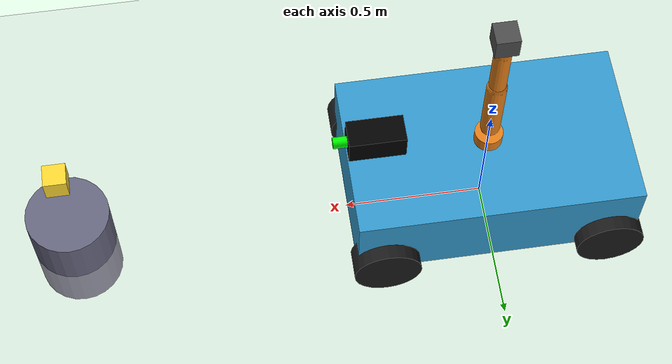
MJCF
<mujoco>
    <option timestep="0.001" integrator="RK4" gravity="0 0 -15"/>

    <default>
        <geom friction="1 0.1 0.1"/>
    </default>

    <visual>
        <headlight ambient="0.5 0.5 0.5" diffuse="0.3 0.3 0.3" specular="0.1 0.1 0.1"/>
        <global offwidth="1920" offheight="1080"/>
    </visual>

    <worldbody>
        <!-- Balanced 5-point lighting: no shadows, symmetric coverage -->
        <light diffuse="0.6 0.6 0.6" pos="0 0 6"  dir="0 0 -1"/>
        <light diffuse="0.4 0.4 0.4" pos="4  4 4"  dir="-1 -1 -1"/>
        <light diffuse="0.4 0.4 0.4" pos="-4 4 4"  dir="1 -1 -1"/>
        <light diffuse="0.4 0.4 0.4" pos="4 -4 4"  dir="-1 1 -1"/>
        <light diffuse="0.4 0.4 0.4" pos="-4 -4 4"  dir="1 1 -1"/>

        <geom type="plane" size="5 5 0.1" rgba="0.8 0.8 0.8 1" friction="1.5 0.005 0.0001"/>

        <!-- ========== Target object for M2 (mobile manipulation task) ========== -->
        <!-- Pedestal (fixed, provides a stable platform) -->
        <body name="pedestal" pos="1.5 0 0">
            <geom type="cylinder" size="0.15 0.2" rgba="0.4 0.4 0.5 1" mass="2" friction="1.5 0.005 0.0001"/>
        </body>

        <!-- Target box (free joint, can be lifted) -->
        <body name="target_box" pos="1.5 0 0.45">
            <freejoint/>
            <geom type="box" size="0.04 0.04 0.04" rgba="1.0 0.85 0.2 1" mass="0.05" friction="1.5 0.1 0.1"/>
        </body>

        <body name="car" pos="0 0 0.22">
            <freejoint/>

            <body name="camera_body" pos="0.4 0 0.25" euler="90 -90 0">
                <camera name="firstperson" pos="0 0 0" euler="0 0 0" fovy="110"/>
                <geom type="box" pos="0 0 0" size="0.05 0.05 0.1" rgba="0 0 0 1" contype="0" conaffinity="0"/>
                <geom type="cylinder" fromto="0 0 0 0 0 -0.15" size="0.02" rgba="0 1 0 1" contype="0" conaffinity="0"/>
            </body>

            <geom type="box" size="0.5 0.3 0.15" rgba="0.2 0.6 0.8 1" mass="10" contype="0" conaffinity="0"/>

            <!-- ========== 4-DOF Arm (M1) ========== -->
            <!-- 5 actuators: shoulder_pan + shoulder_lift + elbow + wrist_pitch + gripper -->
            <body name="arm_base" pos="0 0 0.16">
                <joint name="shoulder_pan" type="hinge" axis="0 0 1" range="-90 90" armature="0.05" damping="0.5"/>
                <geom type="cylinder" size="0.05 0.04" rgba="0.9 0.5 0.1 1" mass="0.15"/>

                <body name="upper_arm" pos="0 0 0.08">
                    <joint name="shoulder_lift" type="hinge" axis="0 1 0" range="-90 90" armature="0.05" damping="0.5"/>
                    <geom type="capsule" size="0.035" fromto="0 0 0 0 0 0.25" rgba="0.9 0.5 0.1 1" mass="0.12"/>

                    <body name="forearm" pos="0 0 0.25">
                        <joint name="elbow" type="hinge" axis="0 1 0" range="-115 115" armature="0.05" damping="0.5"/>
                        <geom type="capsule" size="0.03" fromto="0 0 0 0 0 0.20" rgba="0.9 0.5 0.1 1" mass="0.10"/>

                        <body name="wrist" pos="0 0 0.20">
                            <joint name="wrist_pitch" type="hinge" axis="0 1 0" range="-90 90" armature="0.05" damping="0.5"/>
                            <geom type="capsule" size="0.025" fromto="0 0 0 0 0 0.08" rgba="0.9 0.5 0.1 1" mass="0.05"/>

                            <body name="gripper" pos="0 0 0.08">
                                <joint name="gripper" type="slide" axis="1 0 0" range="-0.03 0.03" armature="0.01" damping="1.0"/>
                                <geom type="box" pos="0 0 0" size="0.04 0.04 0.04" rgba="0.3 0.3 0.3 1" mass="0.03"/>
                                <site name="end_effector" pos="0 0 0" size="0.015" rgba="1 0 0 1"/>
                            </body>
                        </body>
                    </body>
                </body>
            </body>
            <!-- ========== /Arm ========== -->

            <body name="wheel_fl" pos="0.4 0.3 -0.1">
                <joint name="wheel_fl_joint" type="hinge" axis="0 1 0"/>
                <geom type="cylinder" size="0.12 0.05" euler="90 0 0" rgba="0.1 0.1 0.1 1" mass="1" friction="1.5 0.005 0.0001"/>
            </body>
            <body name="wheel_fr" pos="0.4 -0.3 -0.1">
                <joint name="wheel_fr_joint" type="hinge" axis="0 1 0"/>
                <geom type="cylinder" size="0.12 0.05" euler="90 0 0" rgba="0.1 0.1 0.1 1" mass="1" friction="1.5 0.005 0.0001"/>
            </body>
            <body name="wheel_rl" pos="-0.4 0.3 -0.1">
                <joint name="wheel_rl_joint" type="hinge" axis="0 1 0"/>
                <geom type="cylinder" size="0.12 0.05" euler="90 0 0" rgba="0.1 0.1 0.1 1" mass="1" friction="1.5 0.005 0.0001"/>
            </body>
            <body name="wheel_rr" pos="-0.4 -0.3 -0.1">
                <joint name="wheel_rr_joint" type="hinge" axis="0 1 0"/>
                <geom type="cylinder" size="0.12 0.05" euler="90 0 0" rgba="0.1 0.1 0.1 1" mass="1" friction="1.5 0.005 0.0001"/>
            </body>
        </body>
    </worldbody>

    <actuator>
        <motor joint="wheel_fl_joint" name="motor_wheel_fl" gear="3" ctrllimited="true" ctrlrange="-5 5"/>
        <motor joint="wheel_fr_joint" name="motor_wheel_fr" gear="3" ctrllimited="true" ctrlrange="-5 5"/>
        <motor joint="wheel_rl_joint" name="motor_wheel_rl" gear="3" ctrllimited="true" ctrlrange="-5 5"/>
        <motor joint="wheel_rr_joint" name="motor_wheel_rr" gear="3" ctrllimited="true" ctrlrange="-5 5"/>
        <!-- Arm position servos (M3) — higher gains for faster response -->
        <position name="pservo_shoulder_pan"  joint="shoulder_pan"  kp="200" kv="10"/>
        <position name="pservo_shoulder_lift" joint="shoulder_lift" kp="200" kv="10"/>
        <position name="pservo_elbow"          joint="elbow"         kp="200" kv="10"/>
        <position name="pservo_wrist_pitch"    joint="wrist_pitch"   kp="120" kv="6"/>
        <position name="pservo_gripper"        joint="gripper"       kp="300" kv="15"/>
    </actuator>

    <equality>
        <weld name="grasp_weld" body1="gripper" body2="target_box"
              active="false" solref="0.02 1" solimp="0.9 0.95 0.001"/>
    </equality>
</mujoco>
